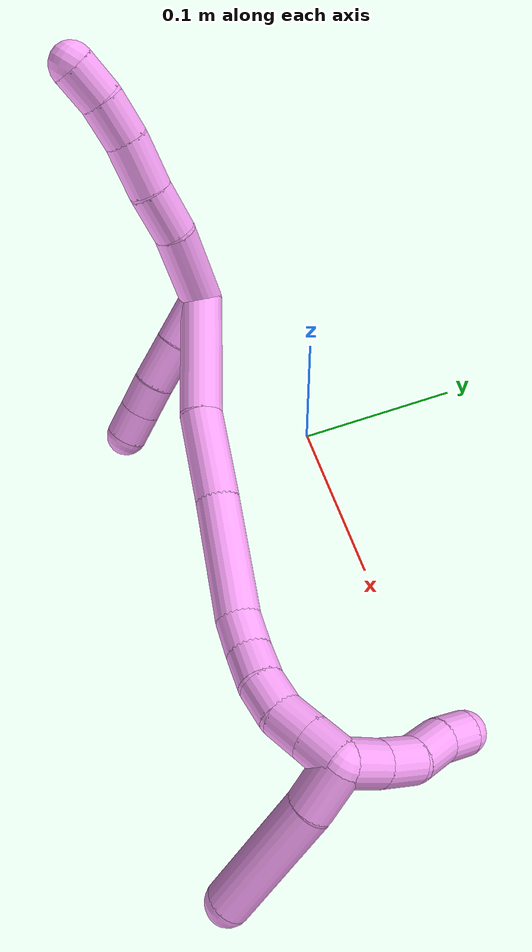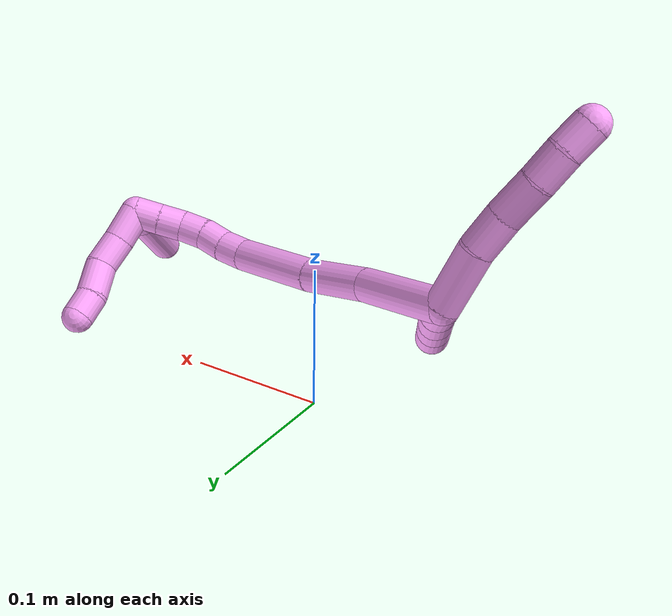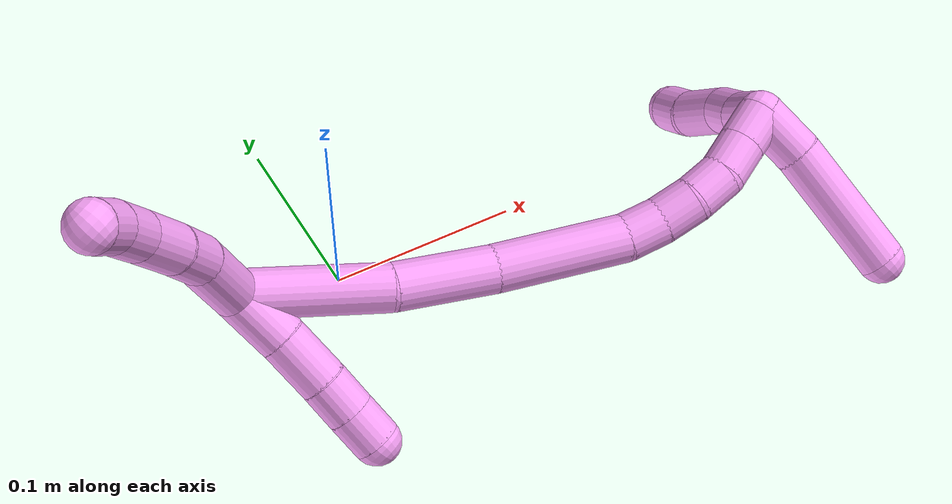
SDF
<sdf version="1.7">
 <world name="default">
  <model name="4">
   <static>0</static>
   <link name="4">
    <collision name="collision-cylinder-e_1_2_8">
     <pose>-0.006833 -0.017496 0.013778 0.903714 -0.297715 -0.145316</pose>
     <geometry><cylinder><radius>0.0125</radius><length>0.046589</length></cylinder></geometry>
     <surface>
      <friction><ode><mu>1.16</mu><mu2>1.16</mu2><slip1>0</slip1><slip2>0</slip2></ode></friction>
      <contact><ode><kp>1e+06</kp><kd>1</kd><max_vel>0</max_vel><min_depth>0.001</min_depth></ode></contact>
     </surface>
    </collision>
    <visual name="visual-cylinder-e_1_2_8">
     <pose>-0.006833 -0.017496 0.013778 0.903714 -0.297715 -0.145316</pose>
     <geometry><cylinder><radius>0.0125</radius><length>0.046589</length></cylinder></geometry>
     <material><ambient>1 0.65098 0.996078 1</ambient></material>
    </visual>
    <collision name="collision-cylinder-e_2_8_9">
     <pose>-0.019875 -0.045253 0.034448 0.979374 -0.465477 -0.25134</pose>
     <geometry><cylinder><radius>0.0125</radius><length>0.027665</length></cylinder></geometry>
     <surface>
      <friction><ode><mu>1.16</mu><mu2>1.16</mu2><slip1>0</slip1><slip2>0</slip2></ode></friction>
      <contact><ode><kp>1e+06</kp><kd>1</kd><max_vel>0</max_vel><min_depth>0.001</min_depth></ode></contact>
     </surface>
    </collision>
    <visual name="visual-cylinder-e_2_8_9">
     <pose>-0.019875 -0.045253 0.034448 0.979374 -0.465477 -0.25134</pose>
     <geometry><cylinder><radius>0.0125</radius><length>0.027665</length></cylinder></geometry>
     <material><ambient>1 0.65098 0.996078 1</ambient></material>
    </visual>
    <collision name="collision-cylinder-e_3_9_10">
     <pose>-0.033385 -0.065368 0.049909 0.855035 -0.509817 -0.236342</pose>
     <geometry><cylinder><radius>0.0125</radius><length>0.029924</length></cylinder></geometry>
     <surface>
      <friction><ode><mu>1.16</mu><mu2>1.16</mu2><slip1>0</slip1><slip2>0</slip2></ode></friction>
      <contact><ode><kp>1e+06</kp><kd>1</kd><max_vel>0</max_vel><min_depth>0.001</min_depth></ode></contact>
     </surface>
    </collision>
    <visual name="visual-cylinder-e_3_9_10">
     <pose>-0.033385 -0.065368 0.049909 0.855035 -0.509817 -0.236342</pose>
     <geometry><cylinder><radius>0.0125</radius><length>0.029924</length></cylinder></geometry>
     <material><ambient>1 0.65098 0.996078 1</ambient></material>
    </visual>
    <collision name="collision-cylinder-e_4_10_11">
     <pose>-0.04653 -0.08414 0.064147 1.00454 -0.505087 -0.281596</pose>
     <geometry><cylinder><radius>0.0125</radius><length>0.02415</length></cylinder></geometry>
     <surface>
      <friction><ode><mu>1.16</mu><mu2>1.16</mu2><slip1>0</slip1><slip2>0</slip2></ode></friction>
      <contact><ode><kp>1e+06</kp><kd>1</kd><max_vel>0</max_vel><min_depth>0.001</min_depth></ode></contact>
     </surface>
    </collision>
    <visual name="visual-cylinder-e_4_10_11">
     <pose>-0.04653 -0.08414 0.064147 1.00454 -0.505087 -0.281596</pose>
     <geometry><cylinder><radius>0.0125</radius><length>0.02415</length></cylinder></geometry>
     <material><ambient>1 0.65098 0.996078 1</ambient></material>
    </visual>
    <collision name="collision-cylinder-e_5_11_6">
     <pose>-0.058388 -0.101341 0.073371 1.16536 -0.58853 -0.394253</pose>
     <geometry><cylinder><radius>0.0125</radius><length>0.021673</length></cylinder></geometry>
     <surface>
      <friction><ode><mu>1.16</mu><mu2>1.16</mu2><slip1>0</slip1><slip2>0</slip2></ode></friction>
      <contact><ode><kp>1e+06</kp><kd>1</kd><max_vel>0</max_vel><min_depth>0.001</min_depth></ode></contact>
     </surface>
    </collision>
    <visual name="visual-cylinder-e_5_11_6">
     <pose>-0.058388 -0.101341 0.073371 1.16536 -0.58853 -0.394253</pose>
     <geometry><cylinder><radius>0.0125</radius><length>0.021673</length></cylinder></geometry>
     <material><ambient>1 0.65098 0.996078 1</ambient></material>
    </visual>
    <collision name="collision-cylinder-e_1_2_12">
     <pose>-4.5e-05 1e-06 -0.015504 -3.14154 -0.00289 3.10722</pose>
     <geometry><cylinder><radius>0.0125</radius><length>0.031008</length></cylinder></geometry>
     <surface>
      <friction><ode><mu>1.16</mu><mu2>1.16</mu2><slip1>0</slip1><slip2>0</slip2></ode></friction>
      <contact><ode><kp>1e+06</kp><kd>1</kd><max_vel>0</max_vel><min_depth>0.001</min_depth></ode></contact>
     </surface>
    </collision>
    <visual name="visual-cylinder-e_1_2_12">
     <pose>-4.5e-05 1e-06 -0.015504 -3.14154 -0.00289 3.10722</pose>
     <geometry><cylinder><radius>0.0125</radius><length>0.031008</length></cylinder></geometry>
     <material><ambient>1 0.65098 0.996078 1</ambient></material>
    </visual>
    <collision name="collision-cylinder-e_2_12_13">
     <pose>-0.000677 0.000742 -0.045389 -3.09013 -0.04077 1.3398</pose>
     <geometry><cylinder><radius>0.0125</radius><length>0.028824</length></cylinder></geometry>
     <surface>
      <friction><ode><mu>1.16</mu><mu2>1.16</mu2><slip1>0</slip1><slip2>0</slip2></ode></friction>
      <contact><ode><kp>1e+06</kp><kd>1</kd><max_vel>0</max_vel><min_depth>0.001</min_depth></ode></contact>
     </surface>
    </collision>
    <visual name="visual-cylinder-e_2_12_13">
     <pose>-0.000677 0.000742 -0.045389 -3.09013 -0.04077 1.3398</pose>
     <geometry><cylinder><radius>0.0125</radius><length>0.028824</length></cylinder></geometry>
     <material><ambient>1 0.65098 0.996078 1</ambient></material>
    </visual>
    <collision name="collision-cylinder-e_3_13_14">
     <pose>-0.001722 0.002675 -0.069712 -3.02228 -0.045685 0.730655</pose>
     <geometry><cylinder><radius>0.0125</radius><length>0.020048</length></cylinder></geometry>
     <surface>
      <friction><ode><mu>1.16</mu><mu2>1.16</mu2><slip1>0</slip1><slip2>0</slip2></ode></friction>
      <contact><ode><kp>1e+06</kp><kd>1</kd><max_vel>0</max_vel><min_depth>0.001</min_depth></ode></contact>
     </surface>
    </collision>
    <visual name="visual-cylinder-e_3_13_14">
     <pose>-0.001722 0.002675 -0.069712 -3.02228 -0.045685 0.730655</pose>
     <geometry><cylinder><radius>0.0125</radius><length>0.020048</length></cylinder></geometry>
     <material><ambient>1 0.65098 0.996078 1</ambient></material>
    </visual>
    <collision name="collision-cylinder-e_4_14_5">
     <pose>-0.002562 0.004949 -0.089649 -3.03374 -0.037959 0.676294</pose>
     <geometry><cylinder><radius>0.0125</radius><length>0.02012</length></cylinder></geometry>
     <surface>
      <friction><ode><mu>1.16</mu><mu2>1.16</mu2><slip1>0</slip1><slip2>0</slip2></ode></friction>
      <contact><ode><kp>1e+06</kp><kd>1</kd><max_vel>0</max_vel><min_depth>0.001</min_depth></ode></contact>
     </surface>
    </collision>
    <visual name="visual-cylinder-e_4_14_5">
     <pose>-0.002562 0.004949 -0.089649 -3.03374 -0.037959 0.676294</pose>
     <geometry><cylinder><radius>0.0125</radius><length>0.02012</length></cylinder></geometry>
     <material><ambient>1 0.65098 0.996078 1</ambient></material>
    </visual>
    <collision name="collision-cylinder-e_1_2_15">
     <pose>0.025876 -0.008059 -0.026421 2.84553 0.752771 2.42001</pose>
     <geometry><cylinder><radius>0.0125</radius><length>0.075699</length></cylinder></geometry>
     <surface>
      <friction><ode><mu>1.16</mu><mu2>1.16</mu2><slip1>0</slip1><slip2>0</slip2></ode></friction>
      <contact><ode><kp>1e+06</kp><kd>1</kd><max_vel>0</max_vel><min_depth>0.001</min_depth></ode></contact>
     </surface>
    </collision>
    <visual name="visual-cylinder-e_1_2_15">
     <pose>0.025876 -0.008059 -0.026421 2.84553 0.752771 2.42001</pose>
     <geometry><cylinder><radius>0.0125</radius><length>0.075699</length></cylinder></geometry>
     <material><ambient>1 0.65098 0.996078 1</ambient></material>
    </visual>
    <collision name="collision-cylinder-e_2_15_16">
     <pose>0.072781 -0.019223 -0.068746 2.94878 0.914215 2.75331</pose>
     <geometry><cylinder><radius>0.0125</radius><length>0.053096</length></cylinder></geometry>
     <surface>
      <friction><ode><mu>1.16</mu><mu2>1.16</mu2><slip1>0</slip1><slip2>0</slip2></ode></friction>
      <contact><ode><kp>1e+06</kp><kd>1</kd><max_vel>0</max_vel><min_depth>0.001</min_depth></ode></contact>
     </surface>
    </collision>
    <visual name="visual-cylinder-e_2_15_16">
     <pose>0.072781 -0.019223 -0.068746 2.94878 0.914215 2.75331</pose>
     <geometry><cylinder><radius>0.0125</radius><length>0.053096</length></cylinder></geometry>
     <material><ambient>1 0.65098 0.996078 1</ambient></material>
    </visual>
    <collision name="collision-cylinder-e_3_16_17">
     <pose>0.122035 -0.02975 -0.104179 2.7784 0.933661 2.44281</pose>
     <geometry><cylinder><radius>0.0125</radius><length>0.070231</length></cylinder></geometry>
     <surface>
      <friction><ode><mu>1.16</mu><mu2>1.16</mu2><slip1>0</slip1><slip2>0</slip2></ode></friction>
      <contact><ode><kp>1e+06</kp><kd>1</kd><max_vel>0</max_vel><min_depth>0.001</min_depth></ode></contact>
     </surface>
    </collision>
    <visual name="visual-cylinder-e_3_16_17">
     <pose>0.122035 -0.02975 -0.104179 2.7784 0.933661 2.44281</pose>
     <geometry><cylinder><radius>0.0125</radius><length>0.070231</length></cylinder></geometry>
     <material><ambient>1 0.65098 0.996078 1</ambient></material>
    </visual>
    <collision name="collision-cylinder-e_4_17_18">
     <pose>0.159399 -0.040086 -0.1275 2.48653 1.0885 2.11849</pose>
     <geometry><cylinder><radius>0.0125</radius><length>0.02063</length></cylinder></geometry>
     <surface>
      <friction><ode><mu>1.16</mu><mu2>1.16</mu2><slip1>0</slip1><slip2>0</slip2></ode></friction>
      <contact><ode><kp>1e+06</kp><kd>1</kd><max_vel>0</max_vel><min_depth>0.001</min_depth></ode></contact>
     </surface>
    </collision>
    <visual name="visual-cylinder-e_4_17_18">
     <pose>0.159399 -0.040086 -0.1275 2.48653 1.0885 2.11849</pose>
     <geometry><cylinder><radius>0.0125</radius><length>0.02063</length></cylinder></geometry>
     <material><ambient>1 0.65098 0.996078 1</ambient></material>
    </visual>
    <collision name="collision-cylinder-e_5_18_19">
     <pose>0.177516 -0.046975 -0.133629 2.10201 1.0965 1.63572</pose>
     <geometry><cylinder><radius>0.0125</radius><length>0.020185</length></cylinder></geometry>
     <surface>
      <friction><ode><mu>1.16</mu><mu2>1.16</mu2><slip1>0</slip1><slip2>0</slip2></ode></friction>
      <contact><ode><kp>1e+06</kp><kd>1</kd><max_vel>0</max_vel><min_depth>0.001</min_depth></ode></contact>
     </surface>
    </collision>
    <visual name="visual-cylinder-e_5_18_19">
     <pose>0.177516 -0.046975 -0.133629 2.10201 1.0965 1.63572</pose>
     <geometry><cylinder><radius>0.0125</radius><length>0.020185</length></cylinder></geometry>
     <material><ambient>1 0.65098 0.996078 1</ambient></material>
    </visual>
    <collision name="collision-cylinder-e_6_19_20">
     <pose>0.196204 -0.053107 -0.137412 2.16175 1.3092 1.92708</pose>
     <geometry><cylinder><radius>0.0125</radius><length>0.020103</length></cylinder></geometry>
     <surface>
      <friction><ode><mu>1.16</mu><mu2>1.16</mu2><slip1>0</slip1><slip2>0</slip2></ode></friction>
      <contact><ode><kp>1e+06</kp><kd>1</kd><max_vel>0</max_vel><min_depth>0.001</min_depth></ode></contact>
     </surface>
    </collision>
    <visual name="visual-cylinder-e_6_19_20">
     <pose>0.196204 -0.053107 -0.137412 2.16175 1.3092 1.92708</pose>
     <geometry><cylinder><radius>0.0125</radius><length>0.020103</length></cylinder></geometry>
     <material><ambient>1 0.65098 0.996078 1</ambient></material>
    </visual>
    <collision name="collision-cylinder-e_7_20_21">
     <pose>0.215831 -0.056238 -0.137761 0.723616 1.4239 0.631338</pose>
     <geometry><cylinder><radius>0.0125</radius><length>0.020051</length></cylinder></geometry>
     <surface>
      <friction><ode><mu>1.16</mu><mu2>1.16</mu2><slip1>0</slip1><slip2>0</slip2></ode></friction>
      <contact><ode><kp>1e+06</kp><kd>1</kd><max_vel>0</max_vel><min_depth>0.001</min_depth></ode></contact>
     </surface>
    </collision>
    <visual name="visual-cylinder-e_7_20_21">
     <pose>0.215831 -0.056238 -0.137761 0.723616 1.4239 0.631338</pose>
     <geometry><cylinder><radius>0.0125</radius><length>0.020051</length></cylinder></geometry>
     <material><ambient>1 0.65098 0.996078 1</ambient></material>
    </visual>
    <collision name="collision-cylinder-e_8_21_1">
     <pose>0.235638 -0.058256 -0.135585 0.771456 1.42012 0.671696</pose>
     <geometry><cylinder><radius>0.0125</radius><length>0.020006</length></cylinder></geometry>
     <surface>
      <friction><ode><mu>1.16</mu><mu2>1.16</mu2><slip1>0</slip1><slip2>0</slip2></ode></friction>
      <contact><ode><kp>1e+06</kp><kd>1</kd><max_vel>0</max_vel><min_depth>0.001</min_depth></ode></contact>
     </surface>
    </collision>
    <visual name="visual-cylinder-e_8_21_1">
     <pose>0.235638 -0.058256 -0.135585 0.771456 1.42012 0.671696</pose>
     <geometry><cylinder><radius>0.0125</radius><length>0.020006</length></cylinder></geometry>
     <material><ambient>1 0.65098 0.996078 1</ambient></material>
    </visual>
    <collision name="collision-cylinder-e_1_1_22">
     <pose>0.245464 -0.05932 -0.148568 3.14036 -0.004489 -2.60547</pose>
     <geometry><cylinder><radius>0.0125</radius><length>0.02812</length></cylinder></geometry>
     <surface>
      <friction><ode><mu>1.16</mu><mu2>1.16</mu2><slip1>0</slip1><slip2>0</slip2></ode></friction>
      <contact><ode><kp>1e+06</kp><kd>1</kd><max_vel>0</max_vel><min_depth>0.001</min_depth></ode></contact>
     </surface>
    </collision>
    <visual name="visual-cylinder-e_1_1_22">
     <pose>0.245464 -0.05932 -0.148568 3.14036 -0.004489 -2.60547</pose>
     <geometry><cylinder><radius>0.0125</radius><length>0.02812</length></cylinder></geometry>
     <material><ambient>1 0.65098 0.996078 1</ambient></material>
    </visual>
    <collision name="collision-cylinder-e_2_22_4">
     <pose>0.241526 -0.057941 -0.198331 -3.1025 -0.108027 2.44765</pose>
     <geometry><cylinder><radius>0.0125</radius><length>0.07188</length></cylinder></geometry>
     <surface>
      <friction><ode><mu>1.16</mu><mu2>1.16</mu2><slip1>0</slip1><slip2>0</slip2></ode></friction>
      <contact><ode><kp>1e+06</kp><kd>1</kd><max_vel>0</max_vel><min_depth>0.001</min_depth></ode></contact>
     </surface>
    </collision>
    <visual name="visual-cylinder-e_2_22_4">
     <pose>0.241526 -0.057941 -0.198331 -3.1025 -0.108027 2.44765</pose>
     <geometry><cylinder><radius>0.0125</radius><length>0.07188</length></cylinder></geometry>
     <material><ambient>1 0.65098 0.996078 1</ambient></material>
    </visual>
    <collision name="collision-cylinder-e_1_1_23">
     <pose>0.249883 -0.046505 -0.134198 -1.54652 0.327941 -0.32021</pose>
     <geometry><cylinder><radius>0.0125</radius><length>0.027044</length></cylinder></geometry>
     <surface>
      <friction><ode><mu>1.16</mu><mu2>1.16</mu2><slip1>0</slip1><slip2>0</slip2></ode></friction>
      <contact><ode><kp>1e+06</kp><kd>1</kd><max_vel>0</max_vel><min_depth>0.001</min_depth></ode></contact>
     </surface>
    </collision>
    <visual name="visual-cylinder-e_1_1_23">
     <pose>0.249883 -0.046505 -0.134198 -1.54652 0.327941 -0.32021</pose>
     <geometry><cylinder><radius>0.0125</radius><length>0.027044</length></cylinder></geometry>
     <material><ambient>1 0.65098 0.996078 1</ambient></material>
    </visual>
    <collision name="collision-cylinder-e_2_23_24">
     <pose>0.258576 -0.022 -0.13183 -1.39687 0.349963 -0.294717</pose>
     <geometry><cylinder><radius>0.0125</radius><length>0.025308</length></cylinder></geometry>
     <surface>
      <friction><ode><mu>1.16</mu><mu2>1.16</mu2><slip1>0</slip1><slip2>0</slip2></ode></friction>
      <contact><ode><kp>1e+06</kp><kd>1</kd><max_vel>0</max_vel><min_depth>0.001</min_depth></ode></contact>
     </surface>
    </collision>
    <visual name="visual-cylinder-e_2_23_24">
     <pose>0.258576 -0.022 -0.13183 -1.39687 0.349963 -0.294717</pose>
     <geometry><cylinder><radius>0.0125</radius><length>0.025308</length></cylinder></geometry>
     <material><ambient>1 0.65098 0.996078 1</ambient></material>
    </visual>
    <collision name="collision-cylinder-e_3_24_25">
     <pose>0.263077 0.003002 -0.12621 -1.30895 0.011798 -0.009053</pose>
     <geometry><cylinder><radius>0.0125</radius><length>0.02753</length></cylinder></geometry>
     <surface>
      <friction><ode><mu>1.16</mu><mu2>1.16</mu2><slip1>0</slip1><slip2>0</slip2></ode></friction>
      <contact><ode><kp>1e+06</kp><kd>1</kd><max_vel>0</max_vel><min_depth>0.001</min_depth></ode></contact>
     </surface>
    </collision>
    <visual name="visual-cylinder-e_3_24_25">
     <pose>0.263077 0.003002 -0.12621 -1.30895 0.011798 -0.009053</pose>
     <geometry><cylinder><radius>0.0125</radius><length>0.02753</length></cylinder></geometry>
     <material><ambient>1 0.65098 0.996078 1</ambient></material>
    </visual>
    <collision name="collision-cylinder-e_4_25_3">
     <pose>0.265916 0.025514 -0.119634 -1.25483 0.269301 -0.195848</pose>
     <geometry><cylinder><radius>0.0125</radius><length>0.020118</length></cylinder></geometry>
     <surface>
      <friction><ode><mu>1.16</mu><mu2>1.16</mu2><slip1>0</slip1><slip2>0</slip2></ode></friction>
      <contact><ode><kp>1e+06</kp><kd>1</kd><max_vel>0</max_vel><min_depth>0.001</min_depth></ode></contact>
     </surface>
    </collision>
    <visual name="visual-cylinder-e_4_25_3">
     <pose>0.265916 0.025514 -0.119634 -1.25483 0.269301 -0.195848</pose>
     <geometry><cylinder><radius>0.0125</radius><length>0.020118</length></cylinder></geometry>
     <material><ambient>1 0.65098 0.996078 1</ambient></material>
    </visual>
    <collision name="collision-sphere-3">
     <pose>0.268592 0.03473 -0.11662 0 -0 0</pose>
     <geometry><sphere><radius>0.0125</radius></sphere></geometry>
     <surface>
      <friction><ode><mu>1.16</mu><mu2>1.16</mu2><slip1>0</slip1><slip2>0</slip2></ode></friction>
      <contact><ode><kp>1e+06</kp><kd>1</kd><max_vel>0</max_vel><min_depth>0.001</min_depth></ode></contact>
     </surface>
    </collision>
    <visual name="visual-sphere-3">
     <pose>0.268592 0.03473 -0.11662 0 -0 0</pose>
     <geometry><sphere><radius>0.0125</radius></sphere></geometry>
     <material><ambient>1 0.65098 0.996078 1</ambient></material>
    </visual>
    <collision name="collision-sphere-25">
     <pose>0.26324 0.016297 -0.122647 0 -0 0</pose>
     <geometry><sphere><radius>0.0125</radius></sphere></geometry>
     <surface>
      <friction><ode><mu>1.16</mu><mu2>1.16</mu2><slip1>0</slip1><slip2>0</slip2></ode></friction>
      <contact><ode><kp>1e+06</kp><kd>1</kd><max_vel>0</max_vel><min_depth>0.001</min_depth></ode></contact>
     </surface>
    </collision>
    <visual name="visual-sphere-25">
     <pose>0.26324 0.016297 -0.122647 0 -0 0</pose>
     <geometry><sphere><radius>0.0125</radius></sphere></geometry>
     <material><ambient>1 0.65098 0.996078 1</ambient></material>
    </visual>
    <collision name="collision-sphere-24">
     <pose>0.262915 -0.010293 -0.129773 0 -0 0</pose>
     <geometry><sphere><radius>0.0125</radius></sphere></geometry>
     <surface>
      <friction><ode><mu>1.16</mu><mu2>1.16</mu2><slip1>0</slip1><slip2>0</slip2></ode></friction>
      <contact><ode><kp>1e+06</kp><kd>1</kd><max_vel>0</max_vel><min_depth>0.001</min_depth></ode></contact>
     </surface>
    </collision>
    <visual name="visual-sphere-24">
     <pose>0.262915 -0.010293 -0.129773 0 -0 0</pose>
     <geometry><sphere><radius>0.0125</radius></sphere></geometry>
     <material><ambient>1 0.65098 0.996078 1</ambient></material>
    </visual>
    <collision name="collision-sphere-23">
     <pose>0.254238 -0.033708 -0.133887 0 -0 0</pose>
     <geometry><sphere><radius>0.0125</radius></sphere></geometry>
     <surface>
      <friction><ode><mu>1.16</mu><mu2>1.16</mu2><slip1>0</slip1><slip2>0</slip2></ode></friction>
      <contact><ode><kp>1e+06</kp><kd>1</kd><max_vel>0</max_vel><min_depth>0.001</min_depth></ode></contact>
     </surface>
    </collision>
    <visual name="visual-sphere-23">
     <pose>0.254238 -0.033708 -0.133887 0 -0 0</pose>
     <geometry><sphere><radius>0.0125</radius></sphere></geometry>
     <material><ambient>1 0.65098 0.996078 1</ambient></material>
    </visual>
    <collision name="collision-sphere-4">
     <pose>0.237651 -0.056544 -0.234034 0 -0 0</pose>
     <geometry><sphere><radius>0.0125</radius></sphere></geometry>
     <surface>
      <friction><ode><mu>1.16</mu><mu2>1.16</mu2><slip1>0</slip1><slip2>0</slip2></ode></friction>
      <contact><ode><kp>1e+06</kp><kd>1</kd><max_vel>0</max_vel><min_depth>0.001</min_depth></ode></contact>
     </surface>
    </collision>
    <visual name="visual-sphere-4">
     <pose>0.237651 -0.056544 -0.234034 0 -0 0</pose>
     <geometry><sphere><radius>0.0125</radius></sphere></geometry>
     <material><ambient>1 0.65098 0.996078 1</ambient></material>
    </visual>
    <collision name="collision-sphere-22">
     <pose>0.245401 -0.059337 -0.162628 0 -0 0</pose>
     <geometry><sphere><radius>0.0125</radius></sphere></geometry>
     <surface>
      <friction><ode><mu>1.16</mu><mu2>1.16</mu2><slip1>0</slip1><slip2>0</slip2></ode></friction>
      <contact><ode><kp>1e+06</kp><kd>1</kd><max_vel>0</max_vel><min_depth>0.001</min_depth></ode></contact>
     </surface>
    </collision>
    <visual name="visual-sphere-22">
     <pose>0.245401 -0.059337 -0.162628 0 -0 0</pose>
     <geometry><sphere><radius>0.0125</radius></sphere></geometry>
     <material><ambient>1 0.65098 0.996078 1</ambient></material>
    </visual>
    <collision name="collision-sphere-1">
     <pose>0.245527 -0.059303 -0.134508 0 -0 0</pose>
     <geometry><sphere><radius>0.0125</radius></sphere></geometry>
     <surface>
      <friction><ode><mu>1.16</mu><mu2>1.16</mu2><slip1>0</slip1><slip2>0</slip2></ode></friction>
      <contact><ode><kp>1e+06</kp><kd>1</kd><max_vel>0</max_vel><min_depth>0.001</min_depth></ode></contact>
     </surface>
    </collision>
    <visual name="visual-sphere-1">
     <pose>0.245527 -0.059303 -0.134508 0 -0 0</pose>
     <geometry><sphere><radius>0.0125</radius></sphere></geometry>
     <material><ambient>1 0.65098 0.996078 1</ambient></material>
    </visual>
    <collision name="collision-sphere-21">
     <pose>0.225748 -0.057209 -0.136661 0 -0 0</pose>
     <geometry><sphere><radius>0.0125</radius></sphere></geometry>
     <surface>
      <friction><ode><mu>1.16</mu><mu2>1.16</mu2><slip1>0</slip1><slip2>0</slip2></ode></friction>
      <contact><ode><kp>1e+06</kp><kd>1</kd><max_vel>0</max_vel><min_depth>0.001</min_depth></ode></contact>
     </surface>
    </collision>
    <visual name="visual-sphere-21">
     <pose>0.225748 -0.057209 -0.136661 0 -0 0</pose>
     <geometry><sphere><radius>0.0125</radius></sphere></geometry>
     <material><ambient>1 0.65098 0.996078 1</ambient></material>
    </visual>
    <collision name="collision-sphere-6">
     <pose>-0.064404 -0.109623 0.076926 0 -0 0</pose>
     <geometry><sphere><radius>0.0125</radius></sphere></geometry>
     <surface>
      <friction><ode><mu>1.16</mu><mu2>1.16</mu2><slip1>0</slip1><slip2>0</slip2></ode></friction>
      <contact><ode><kp>1e+06</kp><kd>1</kd><max_vel>0</max_vel><min_depth>0.001</min_depth></ode></contact>
     </surface>
    </collision>
    <visual name="visual-sphere-6">
     <pose>-0.064404 -0.109623 0.076926 0 -0 0</pose>
     <geometry><sphere><radius>0.0125</radius></sphere></geometry>
     <material><ambient>1 0.65098 0.996078 1</ambient></material>
    </visual>
    <collision name="collision-sphere-11">
     <pose>-0.052372 -0.093058 0.069816 0 -0 0</pose>
     <geometry><sphere><radius>0.0125</radius></sphere></geometry>
     <surface>
      <friction><ode><mu>1.16</mu><mu2>1.16</mu2><slip1>0</slip1><slip2>0</slip2></ode></friction>
      <contact><ode><kp>1e+06</kp><kd>1</kd><max_vel>0</max_vel><min_depth>0.001</min_depth></ode></contact>
     </surface>
    </collision>
    <visual name="visual-sphere-11">
     <pose>-0.052372 -0.093058 0.069816 0 -0 0</pose>
     <geometry><sphere><radius>0.0125</radius></sphere></geometry>
     <material><ambient>1 0.65098 0.996078 1</ambient></material>
    </visual>
    <collision name="collision-sphere-10">
     <pose>-0.040687 -0.075223 0.058478 0 -0 0</pose>
     <geometry><sphere><radius>0.0125</radius></sphere></geometry>
     <surface>
      <friction><ode><mu>1.16</mu><mu2>1.16</mu2><slip1>0</slip1><slip2>0</slip2></ode></friction>
      <contact><ode><kp>1e+06</kp><kd>1</kd><max_vel>0</max_vel><min_depth>0.001</min_depth></ode></contact>
     </surface>
    </collision>
    <visual name="visual-sphere-10">
     <pose>-0.040687 -0.075223 0.058478 0 -0 0</pose>
     <geometry><sphere><radius>0.0125</radius></sphere></geometry>
     <material><ambient>1 0.65098 0.996078 1</ambient></material>
    </visual>
    <collision name="collision-sphere-9">
     <pose>-0.026084 -0.055514 0.04134 0 -0 0</pose>
     <geometry><sphere><radius>0.0125</radius></sphere></geometry>
     <surface>
      <friction><ode><mu>1.16</mu><mu2>1.16</mu2><slip1>0</slip1><slip2>0</slip2></ode></friction>
      <contact><ode><kp>1e+06</kp><kd>1</kd><max_vel>0</max_vel><min_depth>0.001</min_depth></ode></contact>
     </surface>
    </collision>
    <visual name="visual-sphere-9">
     <pose>-0.026084 -0.055514 0.04134 0 -0 0</pose>
     <geometry><sphere><radius>0.0125</radius></sphere></geometry>
     <material><ambient>1 0.65098 0.996078 1</ambient></material>
    </visual>
    <collision name="collision-sphere-2">
     <geometry><sphere><radius>0.0125</radius></sphere></geometry>
     <surface>
      <friction><ode><mu>1.16</mu><mu2>1.16</mu2><slip1>0</slip1><slip2>0</slip2></ode></friction>
      <contact><ode><kp>1e+06</kp><kd>1</kd><max_vel>0</max_vel><min_depth>0.001</min_depth></ode></contact>
     </surface>
    </collision>
    <visual name="visual-sphere-2">
     <geometry><sphere><radius>0.0125</radius></sphere></geometry>
     <material><ambient>1 0.65098 0.996078 1</ambient></material>
    </visual>
    <collision name="collision-sphere-19">
     <pose>0.186495 -0.050949 -0.135964 0 -0 0</pose>
     <geometry><sphere><radius>0.0125</radius></sphere></geometry>
     <surface>
      <friction><ode><mu>1.16</mu><mu2>1.16</mu2><slip1>0</slip1><slip2>0</slip2></ode></friction>
      <contact><ode><kp>1e+06</kp><kd>1</kd><max_vel>0</max_vel><min_depth>0.001</min_depth></ode></contact>
     </surface>
    </collision>
    <visual name="visual-sphere-19">
     <pose>0.186495 -0.050949 -0.135964 0 -0 0</pose>
     <geometry><sphere><radius>0.0125</radius></sphere></geometry>
     <material><ambient>1 0.65098 0.996078 1</ambient></material>
    </visual>
    <collision name="collision-sphere-8">
     <pose>-0.013666 -0.034991 0.027556 0 -0 0</pose>
     <geometry><sphere><radius>0.0125</radius></sphere></geometry>
     <surface>
      <friction><ode><mu>1.16</mu><mu2>1.16</mu2><slip1>0</slip1><slip2>0</slip2></ode></friction>
      <contact><ode><kp>1e+06</kp><kd>1</kd><max_vel>0</max_vel><min_depth>0.001</min_depth></ode></contact>
     </surface>
    </collision>
    <visual name="visual-sphere-8">
     <pose>-0.013666 -0.034991 0.027556 0 -0 0</pose>
     <geometry><sphere><radius>0.0125</radius></sphere></geometry>
     <material><ambient>1 0.65098 0.996078 1</ambient></material>
    </visual>
    <collision name="collision-sphere-12">
     <pose>-9e-05 2e-06 -0.031008 0 -0 0</pose>
     <geometry><sphere><radius>0.0125</radius></sphere></geometry>
     <surface>
      <friction><ode><mu>1.16</mu><mu2>1.16</mu2><slip1>0</slip1><slip2>0</slip2></ode></friction>
      <contact><ode><kp>1e+06</kp><kd>1</kd><max_vel>0</max_vel><min_depth>0.001</min_depth></ode></contact>
     </surface>
    </collision>
    <visual name="visual-sphere-12">
     <pose>-9e-05 2e-06 -0.031008 0 -0 0</pose>
     <geometry><sphere><radius>0.0125</radius></sphere></geometry>
     <material><ambient>1 0.65098 0.996078 1</ambient></material>
    </visual>
    <collision name="collision-sphere-13">
     <pose>-0.001264 0.001483 -0.05977 0 -0 0</pose>
     <geometry><sphere><radius>0.0125</radius></sphere></geometry>
     <surface>
      <friction><ode><mu>1.16</mu><mu2>1.16</mu2><slip1>0</slip1><slip2>0</slip2></ode></friction>
      <contact><ode><kp>1e+06</kp><kd>1</kd><max_vel>0</max_vel><min_depth>0.001</min_depth></ode></contact>
     </surface>
    </collision>
    <visual name="visual-sphere-13">
     <pose>-0.001264 0.001483 -0.05977 0 -0 0</pose>
     <geometry><sphere><radius>0.0125</radius></sphere></geometry>
     <material><ambient>1 0.65098 0.996078 1</ambient></material>
    </visual>
    <collision name="collision-sphere-14">
     <pose>-0.00218 0.003867 -0.079655 0 -0 0</pose>
     <geometry><sphere><radius>0.0125</radius></sphere></geometry>
     <surface>
      <friction><ode><mu>1.16</mu><mu2>1.16</mu2><slip1>0</slip1><slip2>0</slip2></ode></friction>
      <contact><ode><kp>1e+06</kp><kd>1</kd><max_vel>0</max_vel><min_depth>0.001</min_depth></ode></contact>
     </surface>
    </collision>
    <visual name="visual-sphere-14">
     <pose>-0.00218 0.003867 -0.079655 0 -0 0</pose>
     <geometry><sphere><radius>0.0125</radius></sphere></geometry>
     <material><ambient>1 0.65098 0.996078 1</ambient></material>
    </visual>
    <collision name="collision-sphere-5">
     <pose>-0.002944 0.006031 -0.099643 0 -0 0</pose>
     <geometry><sphere><radius>0.0125</radius></sphere></geometry>
     <surface>
      <friction><ode><mu>1.16</mu><mu2>1.16</mu2><slip1>0</slip1><slip2>0</slip2></ode></friction>
      <contact><ode><kp>1e+06</kp><kd>1</kd><max_vel>0</max_vel><min_depth>0.001</min_depth></ode></contact>
     </surface>
    </collision>
    <visual name="visual-sphere-5">
     <pose>-0.002944 0.006031 -0.099643 0 -0 0</pose>
     <geometry><sphere><radius>0.0125</radius></sphere></geometry>
     <material><ambient>1 0.65098 0.996078 1</ambient></material>
    </visual>
    <collision name="collision-sphere-15">
     <pose>0.051753 -0.016118 -0.052841 0 -0 0</pose>
     <geometry><sphere><radius>0.0125</radius></sphere></geometry>
     <surface>
      <friction><ode><mu>1.16</mu><mu2>1.16</mu2><slip1>0</slip1><slip2>0</slip2></ode></friction>
      <contact><ode><kp>1e+06</kp><kd>1</kd><max_vel>0</max_vel><min_depth>0.001</min_depth></ode></contact>
     </surface>
    </collision>
    <visual name="visual-sphere-15">
     <pose>0.051753 -0.016118 -0.052841 0 -0 0</pose>
     <geometry><sphere><radius>0.0125</radius></sphere></geometry>
     <material><ambient>1 0.65098 0.996078 1</ambient></material>
    </visual>
    <collision name="collision-sphere-16">
     <pose>0.093809 -0.022328 -0.084651 0 -0 0</pose>
     <geometry><sphere><radius>0.0125</radius></sphere></geometry>
     <surface>
      <friction><ode><mu>1.16</mu><mu2>1.16</mu2><slip1>0</slip1><slip2>0</slip2></ode></friction>
      <contact><ode><kp>1e+06</kp><kd>1</kd><max_vel>0</max_vel><min_depth>0.001</min_depth></ode></contact>
     </surface>
    </collision>
    <visual name="visual-sphere-16">
     <pose>0.093809 -0.022328 -0.084651 0 -0 0</pose>
     <geometry><sphere><radius>0.0125</radius></sphere></geometry>
     <material><ambient>1 0.65098 0.996078 1</ambient></material>
    </visual>
    <collision name="collision-sphere-17">
     <pose>0.150261 -0.037171 -0.123706 0 -0 0</pose>
     <geometry><sphere><radius>0.0125</radius></sphere></geometry>
     <surface>
      <friction><ode><mu>1.16</mu><mu2>1.16</mu2><slip1>0</slip1><slip2>0</slip2></ode></friction>
      <contact><ode><kp>1e+06</kp><kd>1</kd><max_vel>0</max_vel><min_depth>0.001</min_depth></ode></contact>
     </surface>
    </collision>
    <visual name="visual-sphere-17">
     <pose>0.150261 -0.037171 -0.123706 0 -0 0</pose>
     <geometry><sphere><radius>0.0125</radius></sphere></geometry>
     <material><ambient>1 0.65098 0.996078 1</ambient></material>
    </visual>
    <collision name="collision-sphere-18">
     <pose>0.168538 -0.043001 -0.131294 0 -0 0</pose>
     <geometry><sphere><radius>0.0125</radius></sphere></geometry>
     <surface>
      <friction><ode><mu>1.16</mu><mu2>1.16</mu2><slip1>0</slip1><slip2>0</slip2></ode></friction>
      <contact><ode><kp>1e+06</kp><kd>1</kd><max_vel>0</max_vel><min_depth>0.001</min_depth></ode></contact>
     </surface>
    </collision>
    <visual name="visual-sphere-18">
     <pose>0.168538 -0.043001 -0.131294 0 -0 0</pose>
     <geometry><sphere><radius>0.0125</radius></sphere></geometry>
     <material><ambient>1 0.65098 0.996078 1</ambient></material>
    </visual>
    <collision name="collision-sphere-20">
     <pose>0.205913 -0.055266 -0.138861 0 -0 0</pose>
     <geometry><sphere><radius>0.0125</radius></sphere></geometry>
     <surface>
      <friction><ode><mu>1.16</mu><mu2>1.16</mu2><slip1>0</slip1><slip2>0</slip2></ode></friction>
      <contact><ode><kp>1e+06</kp><kd>1</kd><max_vel>0</max_vel><min_depth>0.001</min_depth></ode></contact>
     </surface>
    </collision>
    <visual name="visual-sphere-20">
     <pose>0.205913 -0.055266 -0.138861 0 -0 0</pose>
     <geometry><sphere><radius>0.0125</radius></sphere></geometry>
     <material><ambient>1 0.65098 0.996078 1</ambient></material>
    </visual>
    <inertial>
     <pose>0.106727 -0.031979 -0.075433 0 -0 0</pose>
     <mass>0.75</mass>
     <inertia>
      <ixx>2.4e-05</ixx>
      <ixy>0</ixy>
      <ixz>0</ixz>
      <iyy>0.000178</iyy>
      <iyz>0</iyz>
      <izz>-5.7e-05</izz>
     </inertia>
    </inertial>
   </link>
   <pose>-0.070866 -0.043772 0.075581 -0.935512 -0.122672 0.454571</pose>
  </model>
 </world>
</sdf>
